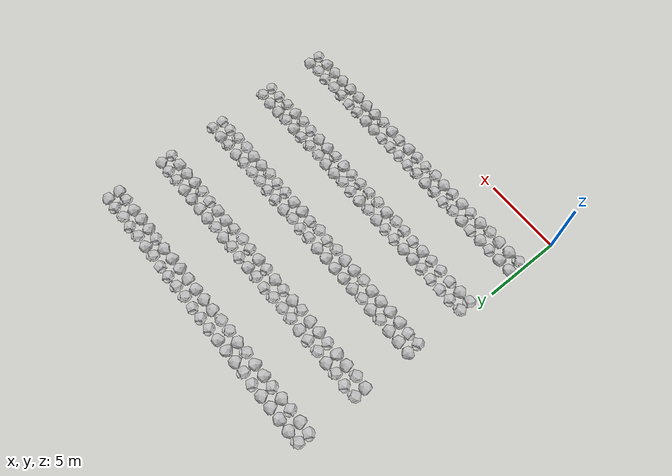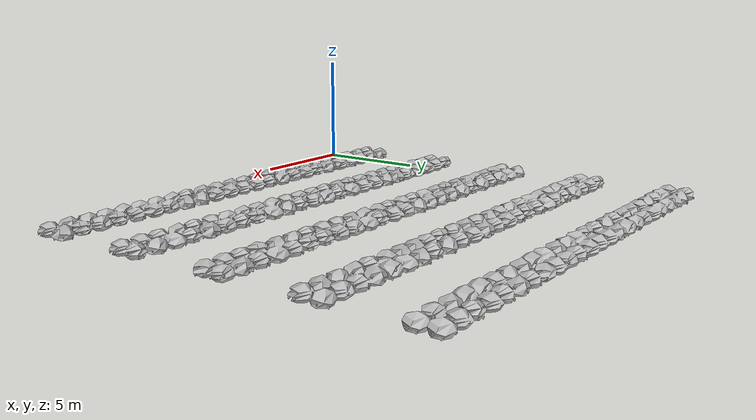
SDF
<?xml version="1.0"?>
<sdf version="1.6">
    <model name="strawberry_field">
      <static>true</static>
      <link name="strawberry_field">
        <visual name="visual">
          <geometry>
            <mesh><uri>model://strawberry_field/meshes/strawberry_field.obj</uri></mesh>
          </geometry>
        </visual>
      </link>
    </model>
</sdf>
